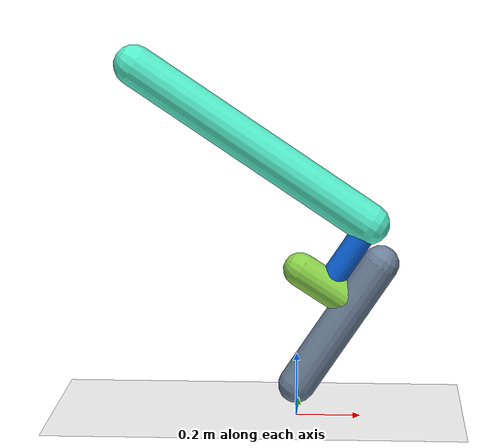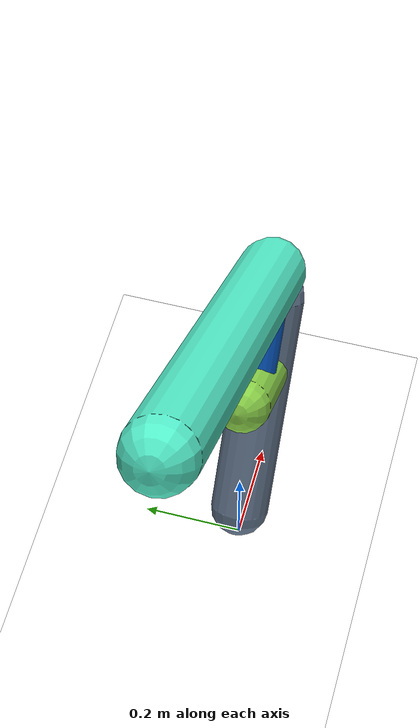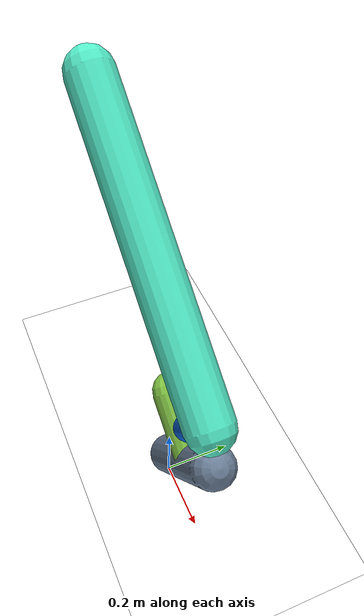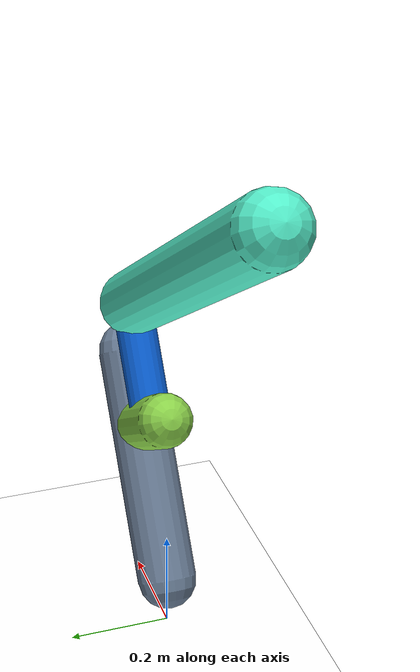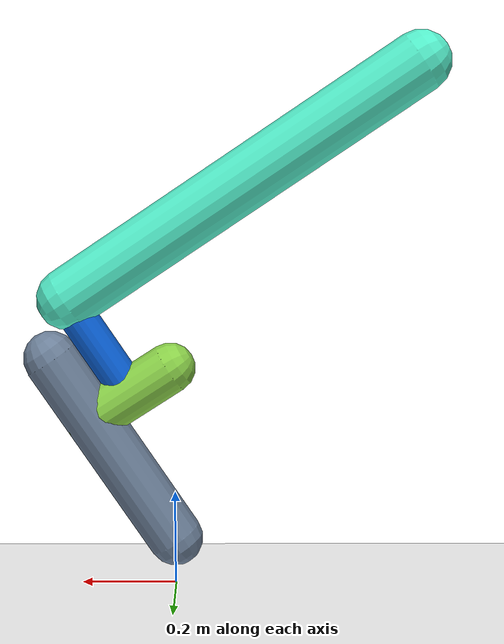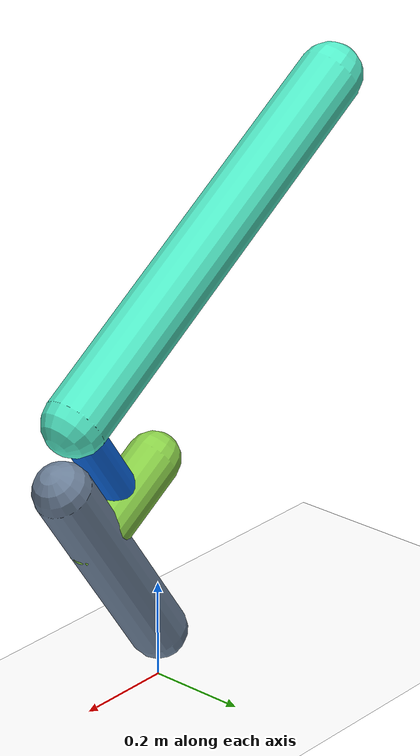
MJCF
<mujoco model="morphology">
  <option timestep="0.01"/>
  <default>
    <default class="/"/>
  </default>
  <asset>
    <texture name="texplane" type="2d" builtin="checker" rgb1="0.1 0.2 0.3" rgb2="0.2 0.3 0.4" width="300" height="300"/>
    <material name="MatPlane" class="/" texture="texplane" texrepeat="20 20" specular="1" shininess="1" reflectance="0.5"/>
  </asset>
  <worldbody>
    <light name="//unnamed_light_0" class="/" directional="true" pos="0 0 1.5" dir="0 0 -1.3" cutoff="1e+02" exponent="1" diffuse="1 1 1" specular="0.1 0.1 0.1"/>
    <geom name="ground" class="/" type="plane" size="15 15 0.5" material="MatPlane" rgba="1 1 1 1"/>
    <body name="body" pos="0 0 0.1">
      <geom name="geom0" class="/" type="capsule" contype="1" conaffinity="1" condim="3" size="0.059" rgba="0.43 0.51 0.61 1" friction="0.4 0.1 0.1" fromto="0 0 0 0.26 0 0.39"/>
      <body name="body1" pos="0.18 0 0.26">
        <geom name="geom1" class="/" type="capsule" contype="1" conaffinity="1" condim="3" size="0.054" rgba="0.55 0.83 0.29 1" friction="0.4 0.1 0.1" fromto="0 0 0 -0.17 0 0.11"/>
        <body name="body2" pos="-0.086 0 0.057">
          <geom name="geom2" class="/" type="capsule" contype="1" conaffinity="1" condim="3" size="0.04" rgba="0.04 0.39 0.86 1" friction="0.4 0.1 0.1" fromto="0 0 0 0.14 0 0.21"/>
          <body name="body3" pos="0.13 0 0.2">
            <geom name="geom3" class="/" type="capsule" contype="1" conaffinity="1" condim="3" size="0.065" rgba="0.33 0.94 0.8 1" friction="0.4 0.1 0.1" fromto="0 0 0 -0.73 0 0.49"/>
            <joint name="joint3" class="/" type="hinge" axis="0 1 0" limited="true" stiffness="20" range="-30 30" armature="0.1" damping="2"/>
          </body>
          <joint name="joint2" class="/" type="hinge" axis="0 1 0" limited="true" stiffness="20" range="-46 46" armature="0.1" damping="2"/>
        </body>
        <joint name="joint1" class="/" type="hinge" axis="0 1 0" limited="true" stiffness="20" range="-60 60" armature="0.1" damping="2"/>
      </body>
      <joint name="rootx" class="/" type="slide" axis="1 0 0" limited="false" stiffness="0" armature="0" damping="0"/>
      <joint name="rootz" class="/" type="slide" axis="0 0 1" limited="false" stiffness="0" armature="0" damping="0"/>
      <joint name="rooty" class="/" type="hinge" axis="0 1 0" limited="false" stiffness="0" armature="0" damping="0"/>
    </body>
  </worldbody>
  <actuator>
    <motor name="motor3" class="/" ctrllimited="true" ctrlrange="-1 1" gear="1.8e+02" joint="joint3"/>
    <motor name="motor2" class="/" ctrllimited="true" ctrlrange="-1 1" gear="1.6e+02" joint="joint2"/>
    <motor name="motor1" class="/" ctrllimited="true" ctrlrange="-1 1" gear="1.6e+02" joint="joint1"/>
  </actuator>
  <sensor>
    <subtreelinvel name="velocity" body="body"/>
  </sensor>
</mujoco>
